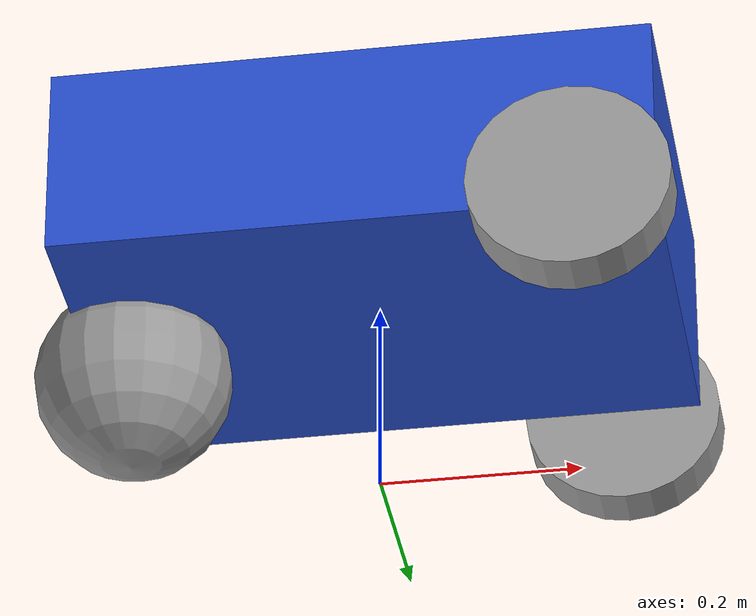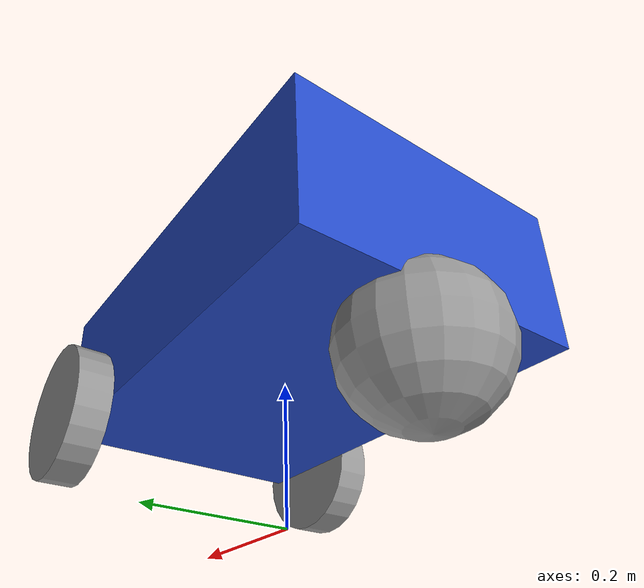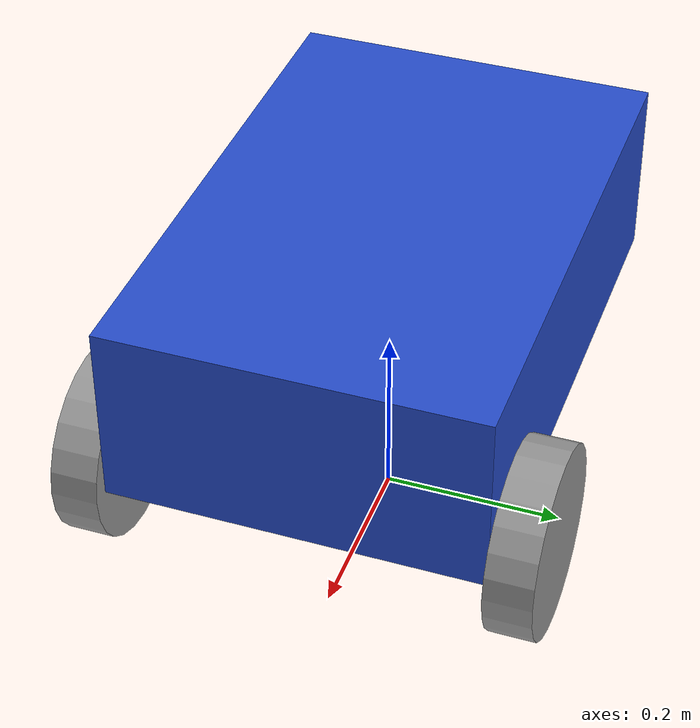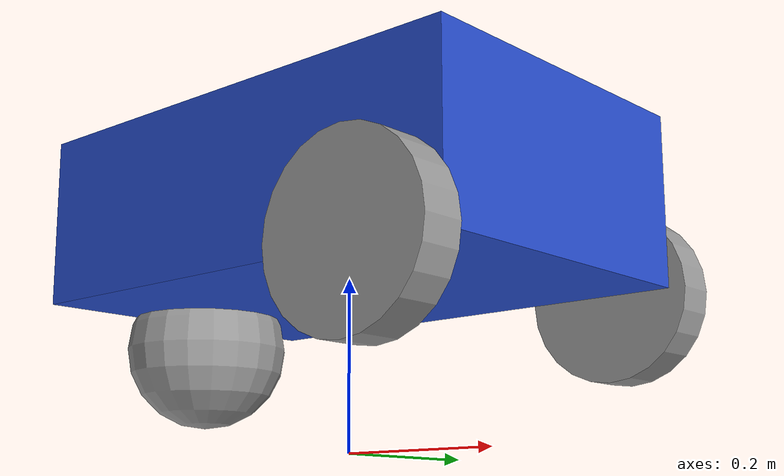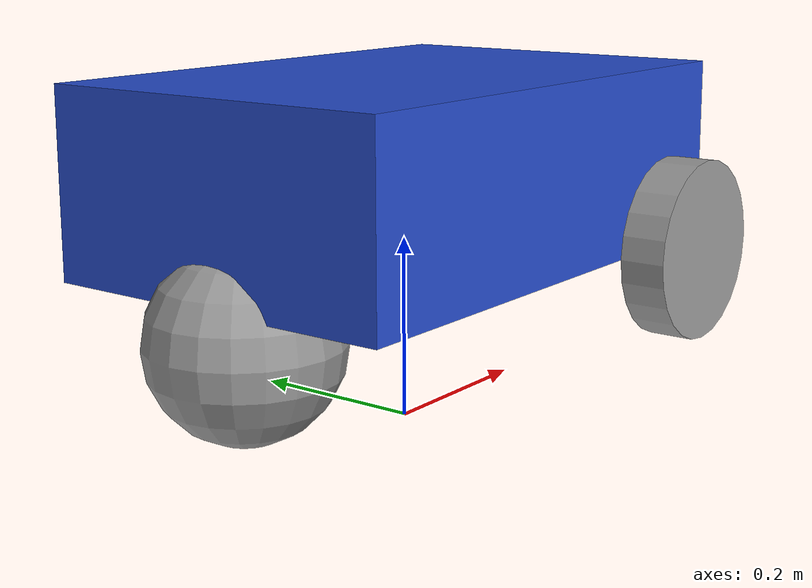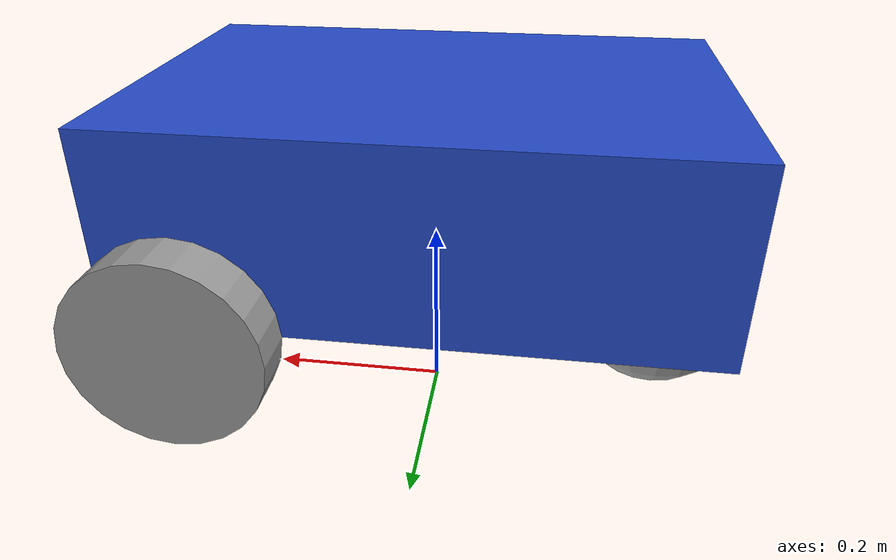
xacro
<?xml version="1.0"?>
<robot xmlns:xacro="http://www.ros.org/wiki/xacro">

    <xacro:property name="base_length" value="0.6" />
    <xacro:property name="base_width" value="0.4" />
    <xacro:property name="base_height" value="0.2" />
    <xacro:property name="wheel_radius" value="0.1" />
    <xacro:property name="wheel_length" value="0.05" />

    <link name="base_footprint" />

    <link name="base_link">
        <visual>
            <geometry>
                <box size="${base_length} ${base_width} ${base_height}" />
            </geometry>
            <origin xyz="0 0 0.18" rpy="0 0 0" />
            <material name="blue" />
        </visual>
    </link>

    <xacro:macro name="wheel_link" params="prefix">
        <link name="${prefix}_wheel_link">
            <visual>
                <geometry>
                <cylinder radius="${wheel_radius}" length="${wheel_length}" />
            </geometry>
            <origin xyz="0 0 0" rpy="${pi / 2.0} 0 0" />
            <material name="grey" />
            </visual>
        </link>
    </xacro:macro>

    <xacro:wheel_link prefix="right" />
    <xacro:wheel_link prefix="left" />

    <link name="caster_wheel_link">
        <visual>
            <geometry>
                <sphere radius="${wheel_radius}" />
            </geometry>
            <origin xyz="0 0 0" rpy="0 0 0" />
            <material name="grey" />
        </visual>
    </link>

    <joint name="base_joint" type="fixed">
        <parent link="base_footprint" />
        <child link="base_link" />
        <origin xyz="0 0 0.1" rpy="0 0 0"/>
    </joint>

    <joint name="base_right_wheel_joint" type="continuous">
    <parent link="base_link" />
    <child link="right_wheel_link" />
    <origin xyz="0.22 0.225 0.08" rpy="0 0 0" />
    <axis xyz="0 1 0" />
    </joint>

    <joint name="base_left_wheel_joint" type="continuous">
    <parent link="base_link" />
    <child link="left_wheel_link" />
    <origin xyz="0.22 -0.225 0.08" rpy="0 0 0" />
    <axis xyz="0 1 0" />
    </joint>

    <joint name="base_caster_wheel_joint" type="continuous">
        <parent link="base_link" />
        <child link="caster_wheel_link" />
        <origin xyz="-0.25 0 0.04" rpy="0 0 0" />
        <axis xyz="0 1 0" />
        <limit lower="-0.5" upper="0.5" velocity="100" effort="100" />
    </joint>
</robot>
